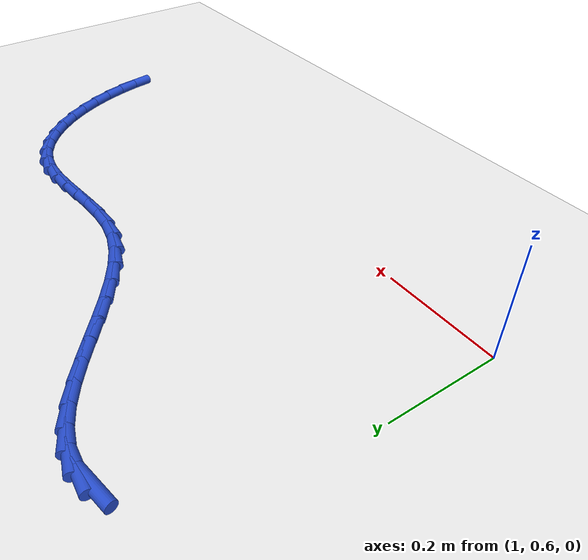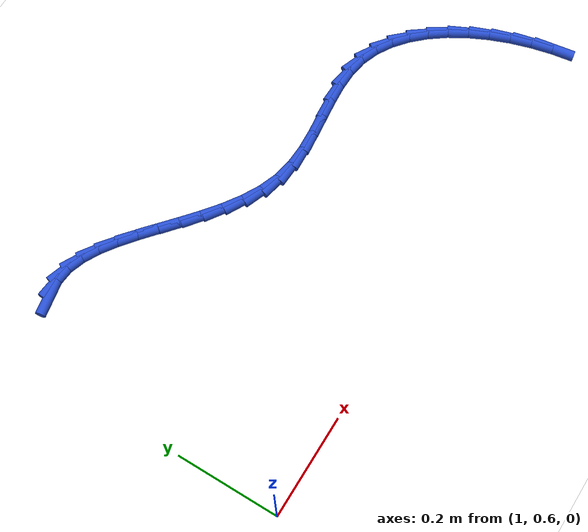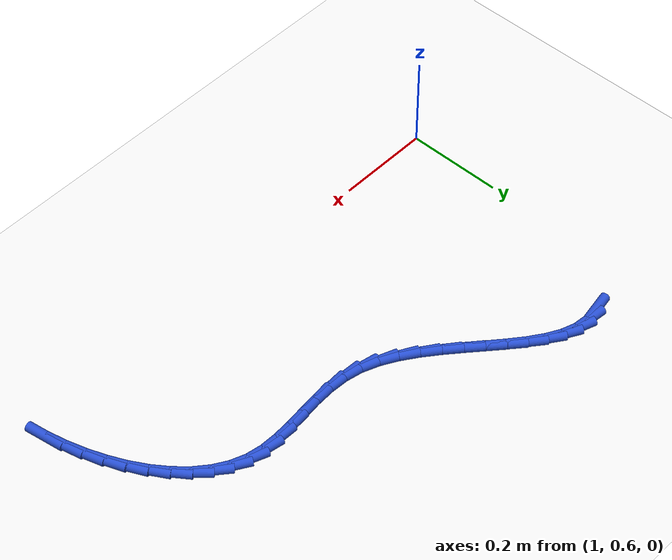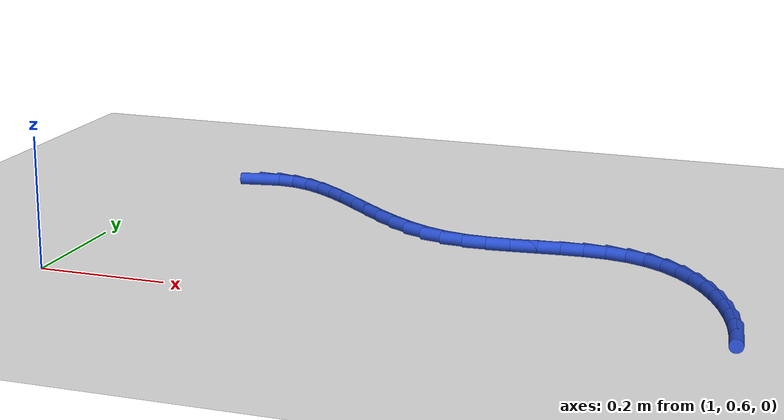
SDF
<sdf version="1.6">
 <world name="default">
  <model name="ground_plane">
   <static>1</static>
   <link name="link">
    <collision name="collision">
     <geometry><plane><normal>0 0 1</normal><size>100 100</size></plane></geometry>
     <surface><friction><ode><mu>100</mu><mu2>50</mu2></ode></friction></surface>
    </collision>
    <visual name="visual">
     <cast_shadows>0</cast_shadows>
     <geometry><plane><normal>0 0 1</normal><size>100 100</size></plane></geometry>
     <material>
      <script><uri>file://media/materials/scripts/gazebo.material</uri><name>Gazebo/WhiteGlow</name></script>
     </material>
    </visual>
   </link>
  </model>
  <model name="line">
   <link name="link_47">
    <pose>1.1212837407556215 1.152090913706987 0.01 0 1.57 0.1722717982515701</pose>
    <collision name="collision">
     <geometry><cylinder><radius>0.01</radius><length>0.08</length></cylinder></geometry>
    </collision>
    <visual name="visual">
     <material>
      <script><name>Gazebo/Blue</name><uri>file://media/materials/scripts/gazebo.material</uri></script>
     </material>
     <geometry><cylinder><radius>0.01</radius><length>0.08</length></cylinder></geometry>
    </visual>
   </link>
   <link name="link_48">
    <pose>1.1504240829267782 1.1571612306065244 0.01 0 1.57 -0.10327528615485557</pose>
    <collision name="collision">
     <geometry><cylinder><radius>0.01</radius><length>0.08</length></cylinder></geometry>
    </collision>
    <visual name="visual">
     <material>
      <script><name>Gazebo/Blue</name><uri>file://media/materials/scripts/gazebo.material</uri></script>
     </material>
     <geometry><cylinder><radius>0.01</radius><length>0.08</length></cylinder></geometry>
    </visual>
   </link>
   <link name="link_49">
    <pose>1.179498133059951 1.1541478788803008 0.01 0 1.57 -0.33209387217334396</pose>
    <collision name="collision">
     <geometry><cylinder><radius>0.01</radius><length>0.08</length></cylinder></geometry>
    </collision>
    <visual name="visual">
     <material>
      <script><name>Gazebo/Blue</name><uri>file://media/materials/scripts/gazebo.material</uri></script>
     </material>
     <geometry><cylinder><radius>0.01</radius><length>0.08</length></cylinder></geometry>
    </visual>
   </link>
   <link name="link_50">
    <pose>1.208608522895355 1.144108692786064 0.01 0 1.57 -0.49667641972006243</pose>
    <collision name="collision">
     <geometry><cylinder><radius>0.01</radius><length>0.08</length></cylinder></geometry>
    </collision>
    <visual name="visual">
     <material>
      <script><name>Gazebo/Blue</name><uri>file://media/materials/scripts/gazebo.material</uri></script>
     </material>
     <geometry><cylinder><radius>0.01</radius><length>0.08</length></cylinder></geometry>
    </visual>
   </link>
   <link name="link_51">
    <pose>1.2378547460610079 1.1282573917796943 0.01 0 1.57 -0.6064473536490044</pose>
    <collision name="collision">
     <geometry><cylinder><radius>0.01</radius><length>0.08</length></cylinder></geometry>
    </collision>
    <visual name="visual">
     <material>
      <script><name>Gazebo/Blue</name><uri>file://media/materials/scripts/gazebo.material</uri></script>
     </material>
     <geometry><cylinder><radius>0.01</radius><length>0.08</length></cylinder></geometry>
    </visual>
   </link>
   <link name="link_52">
    <pose>1.2673362961849277 1.1078076953170704 0.01 0 1.57 -0.6743579098500069</pose>
    <collision name="collision">
     <geometry><cylinder><radius>0.01</radius><length>0.08</length></cylinder></geometry>
    </collision>
    <visual name="visual">
     <material>
      <script><name>Gazebo/Blue</name><uri>file://media/materials/scripts/gazebo.material</uri></script>
     </material>
     <geometry><cylinder><radius>0.01</radius><length>0.08</length></cylinder></geometry>
    </visual>
   </link>
   <link name="link_53">
    <pose>1.2971526668951319 1.0839733228540716 0.01 0 1.57 -0.7100760065322824</pose>
    <collision name="collision">
     <geometry><cylinder><radius>0.01</radius><length>0.08</length></cylinder></geometry>
    </collision>
    <visual name="visual">
     <material>
      <script><name>Gazebo/Blue</name><uri>file://media/materials/scripts/gazebo.material</uri></script>
     </material>
     <geometry><cylinder><radius>0.01</radius><length>0.08</length></cylinder></geometry>
    </visual>
   </link>
   <link name="link_54">
    <pose>1.3274033518196393 1.0579679938465762 0.01 0 1.57 -0.7193106265227113</pose>
    <collision name="collision">
     <geometry><cylinder><radius>0.01</radius><length>0.08</length></cylinder></geometry>
    </collision>
    <visual name="visual">
     <material>
      <script><name>Gazebo/Blue</name><uri>file://media/materials/scripts/gazebo.material</uri></script>
     </material>
     <geometry><cylinder><radius>0.01</radius><length>0.08</length></cylinder></geometry>
    </visual>
   </link>
   <link name="link_55">
    <pose>1.3581878445864675 1.0310054277504646 0.01 0 1.57 -0.7045117779025492</pose>
    <collision name="collision">
     <geometry><cylinder><radius>0.01</radius><length>0.08</length></cylinder></geometry>
    </collision>
    <visual name="visual">
     <material>
      <script><name>Gazebo/Blue</name><uri>file://media/materials/scripts/gazebo.material</uri></script>
     </material>
     <geometry><cylinder><radius>0.01</radius><length>0.08</length></cylinder></geometry>
    </visual>
   </link>
   <link name="link_56">
    <pose>1.3896056388236342 1.0042993440216157 0.01 0 1.57 -0.6654825882840671</pose>
    <collision name="collision">
     <geometry><cylinder><radius>0.01</radius><length>0.08</length></cylinder></geometry>
    </collision>
    <visual name="visual">
     <material>
      <script><name>Gazebo/Blue</name><uri>file://media/materials/scripts/gazebo.material</uri></script>
     </material>
     <geometry><cylinder><radius>0.01</radius><length>0.08</length></cylinder></geometry>
    </visual>
   </link>
   <link name="link_57">
    <pose>1.4217562281591571 0.9790634621159078 0.01 0 1.57 -0.5997347675856455</pose>
    <collision name="collision">
     <geometry><cylinder><radius>0.01</radius><length>0.08</length></cylinder></geometry>
    </collision>
    <visual name="visual">
     <material>
      <script><name>Gazebo/Blue</name><uri>file://media/materials/scripts/gazebo.material</uri></script>
     </material>
     <geometry><cylinder><radius>0.01</radius><length>0.08</length></cylinder></geometry>
    </visual>
   </link>
   <link name="link_58">
    <pose>1.454739106221055 0.9565115014892205 0.01 0 1.57 -0.5028716586022546</pose>
    <collision name="collision">
     <geometry><cylinder><radius>0.01</radius><length>0.08</length></cylinder></geometry>
    </collision>
    <visual name="visual">
     <material>
      <script><name>Gazebo/Blue</name><uri>file://media/materials/scripts/gazebo.material</uri></script>
     </material>
     <geometry><cylinder><radius>0.01</radius><length>0.08</length></cylinder></geometry>
    </visual>
   </link>
   <link name="link_59">
    <pose>1.4886537666373454 0.9378571815974337 0.01 0 1.57 -0.3697193525450164</pose>
    <collision name="collision">
     <geometry><cylinder><radius>0.01</radius><length>0.08</length></cylinder></geometry>
    </collision>
    <visual name="visual">
     <material>
      <script><name>Gazebo/Blue</name><uri>file://media/materials/scripts/gazebo.material</uri></script>
     </material>
     <geometry><cylinder><radius>0.01</radius><length>0.08</length></cylinder></geometry>
    </visual>
   </link>
   <link name="link_60">
    <pose>1.5235997030360469 0.924314221896426 0.01 0 1.57 -0.20212177524446714</pose>
    <collision name="collision">
     <geometry><cylinder><radius>0.01</radius><length>0.08</length></cylinder></geometry>
    </collision>
    <visual name="visual">
     <material>
      <script><name>Gazebo/Blue</name><uri>file://media/materials/scripts/gazebo.material</uri></script>
     </material>
     <geometry><cylinder><radius>0.01</radius><length>0.08</length></cylinder></geometry>
    </visual>
   </link>
   <link name="link_61">
    <pose>1.5596470012927166 0.9169274112970391 0.01 0 1.57 -0.052382942479392715</pose>
    <collision name="collision">
     <geometry><cylinder><radius>0.01</radius><length>0.08</length></cylinder></geometry>
    </collision>
    <visual name="visual">
     <material>
      <script><name>Gazebo/Blue</name><uri>file://media/materials/scripts/gazebo.material</uri></script>
     </material>
     <geometry><cylinder><radius>0.01</radius><length>0.08</length></cylinder></geometry>
    </visual>
   </link>
   <link name="link_62">
    <pose>1.5965611785759957 0.914991967479504 0.01 0 1.57 0.04750513816031851</pose>
    <collision name="collision">
     <geometry><cylinder><radius>0.01</radius><length>0.08</length></cylinder></geometry>
    </collision>
    <visual name="visual">
     <material>
      <script><name>Gazebo/Blue</name><uri>file://media/materials/scripts/gazebo.material</uri></script>
     </material>
     <geometry><cylinder><radius>0.01</radius><length>0.08</length></cylinder></geometry>
    </visual>
   </link>
   <link name="link_63">
    <pose>1.6339276284961053 0.9167684023627353 0.01 0 1.57 0.09954094323917025</pose>
    <collision name="collision">
     <geometry><cylinder><radius>0.01</radius><length>0.08</length></cylinder></geometry>
    </collision>
    <visual name="visual">
     <material>
      <script><name>Gazebo/Blue</name><uri>file://media/materials/scripts/gazebo.material</uri></script>
     </material>
     <geometry><cylinder><radius>0.01</radius><length>0.08</length></cylinder></geometry>
    </visual>
   </link>
   <link name="link_64">
    <pose>1.6713293993138387 0.9205037551883966 0.01 0 1.57 0.10606441386828748</pose>
    <collision name="collision">
     <geometry><cylinder><radius>0.01</radius><length>0.08</length></cylinder></geometry>
    </collision>
    <visual name="visual">
     <material>
      <script><name>Gazebo/Blue</name><uri>file://media/materials/scripts/gazebo.material</uri></script>
     </material>
     <geometry><cylinder><radius>0.01</radius><length>0.08</length></cylinder></geometry>
    </visual>
   </link>
   <link name="link_65">
    <pose>1.7083495392899866 0.9244450651981511 0.01 0 1.57 0.06600567359334854</pose>
    <collision name="collision">
     <geometry><cylinder><radius>0.01</radius><length>0.08</length></cylinder></geometry>
    </collision>
    <visual name="visual">
     <material>
      <script><name>Gazebo/Blue</name><uri>file://media/materials/scripts/gazebo.material</uri></script>
     </material>
     <geometry><cylinder><radius>0.01</radius><length>0.08</length></cylinder></geometry>
    </visual>
   </link>
   <link name="link_66">
    <pose>1.7445710966853414 0.9268393716336634 0.01 0 1.57 -0.02586571784299574</pose>
    <collision name="collision">
     <geometry><cylinder><radius>0.01</radius><length>0.08</length></cylinder></geometry>
    </collision>
    <visual name="visual">
     <material>
      <script><name>Gazebo/Blue</name><uri>file://media/materials/scripts/gazebo.material</uri></script>
     </material>
     <geometry><cylinder><radius>0.01</radius><length>0.08</length></cylinder></geometry>
    </visual>
   </link>
   <link name="link_67">
    <pose>1.7795771197606944 0.9259337137365963 0.01 0 1.57 -0.17655309258958518</pose>
    <collision name="collision">
     <geometry><cylinder><radius>0.01</radius><length>0.08</length></cylinder></geometry>
    </collision>
    <visual name="visual">
     <material>
      <script><name>Gazebo/Blue</name><uri>file://media/materials/scripts/gazebo.material</uri></script>
     </material>
     <geometry><cylinder><radius>0.01</radius><length>0.08</length></cylinder></geometry>
    </visual>
   </link>
   <link name="link_68">
    <pose>1.812951234125275 0.9199794145437403 0.01 0 1.57 -0.36612464667484435</pose>
    <collision name="collision">
     <geometry><cylinder><radius>0.01</radius><length>0.08</length></cylinder></geometry>
    </collision>
    <visual name="visual">
     <material>
      <script><name>Gazebo/Blue</name><uri>file://media/materials/scripts/gazebo.material</uri></script>
     </material>
     <geometry><cylinder><radius>0.01</radius><length>0.08</length></cylinder></geometry>
    </visual>
   </link>
   <link name="link_69">
    <pose>1.8443720181697452 0.9079323253043804 0.01 0 1.57 -0.5427850114803708</pose>
    <collision name="collision">
     <geometry><cylinder><radius>0.01</radius><length>0.08</length></cylinder></geometry>
    </collision>
    <visual name="visual">
     <material>
      <script><name>Gazebo/Blue</name><uri>file://media/materials/scripts/gazebo.material</uri></script>
     </material>
     <geometry><cylinder><radius>0.01</radius><length>0.08</length></cylinder></geometry>
    </visual>
   </link>
   <link name="link_70">
    <pose>1.8737177898526396 0.8902303197909393 0.01 0 1.57 -0.6966135162665091</pose>
    <collision name="collision">
     <geometry><cylinder><radius>0.01</radius><length>0.08</length></cylinder></geometry>
    </collision>
    <visual name="visual">
     <material>
      <script><name>Gazebo/Blue</name><uri>file://media/materials/scripts/gazebo.material</uri></script>
     </material>
     <geometry><cylinder><radius>0.01</radius><length>0.08</length></cylinder></geometry>
    </visual>
   </link>
   <link name="link_71">
    <pose>1.9008921104196952 0.8674985712708231 0.01 0 1.57 -0.8282191999990347</pose>
    <collision name="collision">
     <geometry><cylinder><radius>0.01</radius><length>0.08</length></cylinder></geometry>
    </collision>
    <visual name="visual">
     <material>
      <script><name>Gazebo/Blue</name><uri>file://media/materials/scripts/gazebo.material</uri></script>
     </material>
     <geometry><cylinder><radius>0.01</radius><length>0.08</length></cylinder></geometry>
    </visual>
   </link>
   <link name="link_72">
    <pose>1.9257985411166496 0.84036225301144 0.01 0 1.57 -0.9407752272063327</pose>
    <collision name="collision">
     <geometry><cylinder><radius>0.01</radius><length>0.08</length></cylinder></geometry>
    </collision>
    <visual name="visual">
     <material>
      <script><name>Gazebo/Blue</name><uri>file://media/materials/scripts/gazebo.material</uri></script>
     </material>
     <geometry><cylinder><radius>0.01</radius><length>0.08</length></cylinder></geometry>
    </visual>
   </link>
   <link name="link_73">
    <pose>1.9483406431892392 0.8094465382801971 0.01 0 1.57 -1.0381962233080713</pose>
    <collision name="collision">
     <geometry><cylinder><radius>0.01</radius><length>0.08</length></cylinder></geometry>
    </collision>
    <visual name="visual">
     <material>
      <script><name>Gazebo/Blue</name><uri>file://media/materials/scripts/gazebo.material</uri></script>
     </material>
     <geometry><cylinder><radius>0.01</radius><length>0.08</length></cylinder></geometry>
    </visual>
   </link>
   <link name="link_74">
    <pose>1.9684219778832013 0.7753766003445011 0.01 0 1.57 -1.1242402497801183</pose>
    <collision name="collision">
     <geometry><cylinder><radius>0.01</radius><length>0.08</length></cylinder></geometry>
    </collision>
    <visual name="visual">
     <material>
      <script><name>Gazebo/Blue</name><uri>file://media/materials/scripts/gazebo.material</uri></script>
     </material>
     <geometry><cylinder><radius>0.01</radius><length>0.08</length></cylinder></geometry>
    </visual>
   </link>
   <link name="link_75">
    <pose>1.9859461064442727 0.7387776124717592 0.01 0 1.57 -1.2022275043584887</pose>
    <collision name="collision">
     <geometry><cylinder><radius>0.01</radius><length>0.08</length></cylinder></geometry>
    </collision>
    <visual name="visual">
     <material>
      <script><name>Gazebo/Blue</name><uri>file://media/materials/scripts/gazebo.material</uri></script>
     </material>
     <geometry><cylinder><radius>0.01</radius><length>0.08</length></cylinder></geometry>
    </visual>
   </link>
   <link name="link_76">
    <pose>2.00081659011819 0.7002747479293793 0.01 0 1.57 -1.275057210495377</pose>
    <collision name="collision">
     <geometry><cylinder><radius>0.01</radius><length>0.08</length></cylinder></geometry>
    </collision>
    <visual name="visual">
     <material>
      <script><name>Gazebo/Blue</name><uri>file://media/materials/scripts/gazebo.material</uri></script>
     </material>
     <geometry><cylinder><radius>0.01</radius><length>0.08</length></cylinder></geometry>
    </visual>
   </link>
   <link name="link_77">
    <pose>2.0129369901506906 0.6604931799847679 0.01 0 1.57 -1.3453433039297358</pose>
    <collision name="collision">
     <geometry><cylinder><radius>0.01</radius><length>0.08</length></cylinder></geometry>
    </collision>
    <visual name="visual">
     <material>
      <script><name>Gazebo/Blue</name><uri>file://media/materials/scripts/gazebo.material</uri></script>
     </material>
     <geometry><cylinder><radius>0.01</radius><length>0.08</length></cylinder></geometry>
    </visual>
   </link>
   <link name="link_78">
    <pose>2.0222108677875115 0.6200580819053322 0.01 0 1.57 -1.415594491852058</pose>
    <collision name="collision">
     <geometry><cylinder><radius>0.01</radius><length>0.08</length></cylinder></geometry>
    </collision>
    <visual name="visual">
     <material>
      <script><name>Gazebo/Blue</name><uri>file://media/materials/scripts/gazebo.material</uri></script>
     </material>
     <geometry><cylinder><radius>0.01</radius><length>0.08</length></cylinder></geometry>
    </visual>
   </link>
  </model>
 </world>
</sdf>
